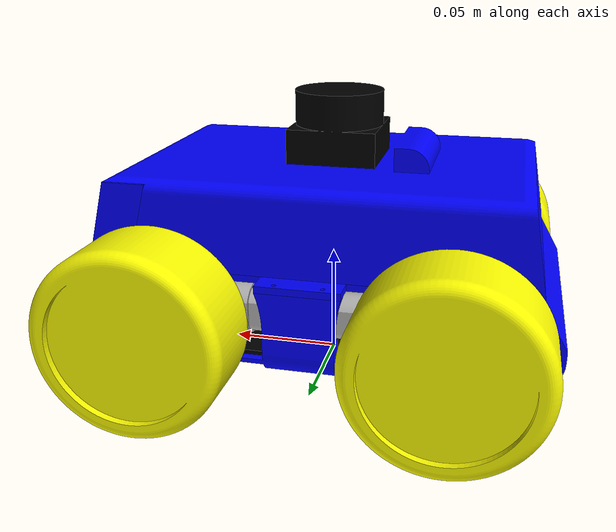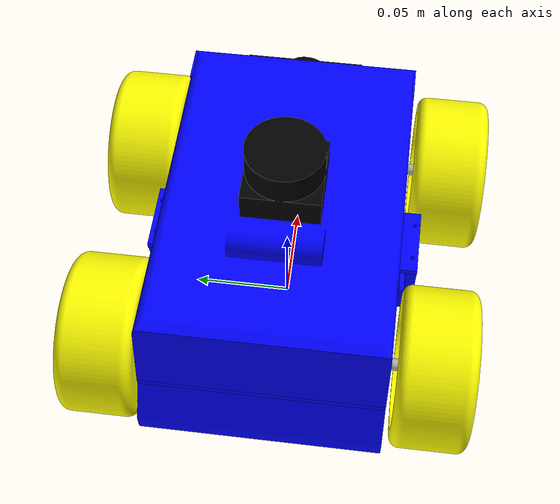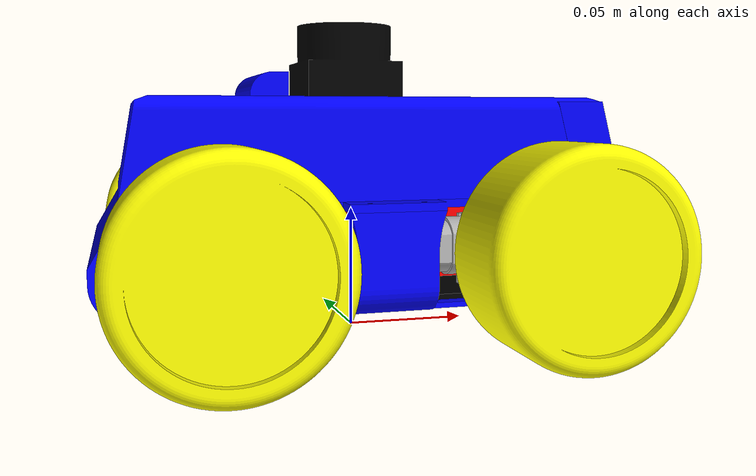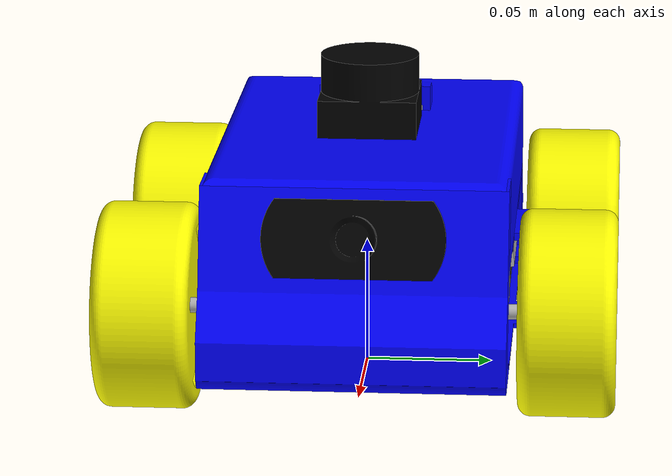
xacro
<?xml version="1.0"?>
<robot name = "Robot_Mecanum" xmlns:xacro="http://www.ros.org/wiki/xacro">

    <xacro:include filename="materials.xacro"/>
    <xacro:include filename="Robot_Mecanum.xacro"/>
    <xacro:include filename="Robot_Mecanum.gazebo"/>
    <xacro:include filename="Robot_Mecanum.trans"/>
    <xacro:include filename="camera.xacro"/>
    <xacro:include filename="lidar.xacro"/>
    <xacro:include filename="imu.xacro"/>

</robot>

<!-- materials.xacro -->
<robot name="Robot_Mecanum" xmlns:xacro="http://www.ros.org/wiki/xacro" >

<material name="gray">
  <color rgba="0.700 0.700 0.700 1.000"/>
</material>

<material name="yellow">
  <color rgba="1.000 1.000 0.000 1.000"/>
</material>

<material name="blue">
  <color rgba="0.000 0.000 1.000 1.000"/>
</material>

<material name="red">
  <color rgba="1.000 0.000 0.000 1.000"/>
</material>

<material name="black">
  <color rgba="0.000 0.000 0.000 1.000"/>
</material>

</robot>

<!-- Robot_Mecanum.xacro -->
<robot name="Robot_Mecanum" xmlns:xacro="http://www.ros.org/wiki/xacro">

<link name="base_link">
  <inertial>
    <origin xyz="4.577524821338663e-06 0.0007996506694356291 0.02200000000000004" rpy="0 0 0"/>
    <mass value="0.24247947305060244"/>
    <inertia ixx="0.000249" iyy="0.000391" izz="0.00064" ixy="-0.0" iyz="0.0" ixz="-0.0"/>
  </inertial>
  <visual>
    <origin xyz="0 0 0" rpy="0 0 0"/>
    <geometry>
      <mesh filename="file://$(find Robot_Mecanum_description)/meshes/base_link.stl" scale="0.001 0.001 0.001"/>
    </geometry>
    <material name="black"/>
  </visual>
  <collision>
    <origin xyz="0 0 0" rpy="0 0 0"/>
    <geometry>
      <mesh filename="file://$(find Robot_Mecanum_description)/meshes/base_link.stl" scale="0.001 0.001 0.001"/>
    </geometry>
  </collision>
</link>

<link name="Uchwyt1_1">
  <inertial>
    <origin xyz="-3.1743554191540624e-06 -0.003228853201678865 0.009790845467155689" rpy="0 0 0"/>
    <mass value="0.006070351658499736"/>
    <inertia ixx="1e-06" iyy="1e-06" izz="0.0" ixy="-0.0" iyz="0.0" ixz="0.0"/>
  </inertial>
  <visual>
    <origin xyz="0.041097 -0.043 -0.023" rpy="0 0 0"/>
    <geometry>
      <mesh filename="file://$(find Robot_Mecanum_description)/meshes/Uchwyt1_1.stl" scale="0.001 0.001 0.001"/>
    </geometry>
    <material name="gray"/>
  </visual>
  <collision>
    <origin xyz="0.041097 -0.043 -0.023" rpy="0 0 0"/>
    <geometry>
      <mesh filename="file://$(find Robot_Mecanum_description)/meshes/Uchwyt1_1.stl" scale="0.001 0.001 0.001"/>
    </geometry>
  </collision>
</link>

<link name="Uchwyt2_1">
  <inertial>
    <origin xyz="3.0609228044570225e-06 0.003228853201678837 0.009790845407550992" rpy="0 0 0"/>
    <mass value="0.006070351658499741"/>
    <inertia ixx="1e-06" iyy="1e-06" izz="0.0" ixy="-0.0" iyz="-0.0" ixz="-0.0"/>
  </inertial>
  <visual>
    <origin xyz="0.041095 0.0415 -0.023" rpy="0 0 0"/>
    <geometry>
      <mesh filename="file://$(find Robot_Mecanum_description)/meshes/Uchwyt2_1.stl" scale="0.001 0.001 0.001"/>
    </geometry>
    <material name="gray"/>
  </visual>
  <collision>
    <origin xyz="0.041095 0.0415 -0.023" rpy="0 0 0"/>
    <geometry>
      <mesh filename="file://$(find Robot_Mecanum_description)/meshes/Uchwyt2_1.stl" scale="0.001 0.001 0.001"/>
    </geometry>
  </collision>
</link>

<link name="Uchwyt4_1">
  <inertial>
    <origin xyz="3.034271700647073e-06 0.0032288532016788787 0.009790845407551117" rpy="0 0 0"/>
    <mass value="0.006070351658499748"/>
    <inertia ixx="1e-06" iyy="1e-06" izz="0.0" ixy="-0.0" iyz="-0.0" ixz="-0.0"/>
  </inertial>
  <visual>
    <origin xyz="-0.0399 0.0415 -0.023" rpy="0 0 0"/>
    <geometry>
      <mesh filename="file://$(find Robot_Mecanum_description)/meshes/Uchwyt4_1.stl" scale="0.001 0.001 0.001"/>
    </geometry>
    <material name="gray"/>
  </visual>
  <collision>
    <origin xyz="-0.0399 0.0415 -0.023" rpy="0 0 0"/>
    <geometry>
      <mesh filename="file://$(find Robot_Mecanum_description)/meshes/Uchwyt4_1.stl" scale="0.001 0.001 0.001"/>
    </geometry>
  </collision>
</link>

<link name="Uchwyt3_1">
  <inertial>
    <origin xyz="-3.309799832242055e-06 -0.0032288532016787053 0.009790845407550972" rpy="0 0 0"/>
    <mass value="0.006070351658499724"/>
    <inertia ixx="1e-06" iyy="1e-06" izz="0.0" ixy="-0.0" iyz="0.0" ixz="0.0"/>
  </inertial>
  <visual>
    <origin xyz="-0.039898 -0.043 -0.023" rpy="0 0 0"/>
    <geometry>
      <mesh filename="file://$(find Robot_Mecanum_description)/meshes/Uchwyt3_1.stl" scale="0.001 0.001 0.001"/>
    </geometry>
    <material name="gray"/>
  </visual>
  <collision>
    <origin xyz="-0.039898 -0.043 -0.023" rpy="0 0 0"/>
    <geometry>
      <mesh filename="file://$(find Robot_Mecanum_description)/meshes/Uchwyt3_1.stl" scale="0.001 0.001 0.001"/>
    </geometry>
  </collision>
</link>

<link name="Silnik1_1">
  <inertial>
    <origin xyz="-0.0031191816336816544 0.00950000869866692 -0.008999995008126038" rpy="0 0 0"/>
    <mass value="0.025325764546616242"/>
    <inertia ixx="2e-06" iyy="9e-06" izz="9e-06" ixy="-0.0" iyz="0.0" ixz="-0.0"/>
  </inertial>
  <visual>
    <origin xyz="0.041099 -0.039 -0.049" rpy="0 0 0"/>
    <geometry>
      <mesh filename="file://$(find Robot_Mecanum_description)/meshes/Silnik1_1.stl" scale="0.001 0.001 0.001"/>
    </geometry>
    <material name="gray"/>
  </visual>
  <collision>
    <origin xyz="0.041099 -0.039 -0.049" rpy="0 0 0"/>
    <geometry>
      <mesh filename="file://$(find Robot_Mecanum_description)/meshes/Silnik1_1.stl" scale="0.001 0.001 0.001"/>
    </geometry>
  </collision>
</link>

<link name="Silnik2_1">
  <inertial>
    <origin xyz="-0.0031192637758870254 -0.009499991301333055 -0.008999995067730651" rpy="0 0 0"/>
    <mass value="0.025325764546616242"/>
    <inertia ixx="2e-06" iyy="9e-06" izz="9e-06" ixy="-0.0" iyz="0.0" ixz="-0.0"/>
  </inertial>
  <visual>
    <origin xyz="0.041094 0.0375 -0.049" rpy="0 0 0"/>
    <geometry>
      <mesh filename="file://$(find Robot_Mecanum_description)/meshes/Silnik2_1.stl" scale="0.001 0.001 0.001"/>
    </geometry>
    <material name="gray"/>
  </visual>
  <collision>
    <origin xyz="0.041094 0.0375 -0.049" rpy="0 0 0"/>
    <geometry>
      <mesh filename="file://$(find Robot_Mecanum_description)/meshes/Silnik2_1.stl" scale="0.001 0.001 0.001"/>
    </geometry>
  </collision>
</link>

<link name="Silnik3_1">
  <inertial>
    <origin xyz="0.003120014898859255 0.009499991301333152 -0.008999995067730644" rpy="0 0 0"/>
    <mass value="0.025325764546616253"/>
    <inertia ixx="2e-06" iyy="9e-06" izz="9e-06" ixy="-0.0" iyz="-0.0" ixz="0.0"/>
  </inertial>
  <visual>
    <origin xyz="-0.039896 -0.039 -0.049" rpy="0 0 0"/>
    <geometry>
      <mesh filename="file://$(find Robot_Mecanum_description)/meshes/Silnik3_1.stl" scale="0.001 0.001 0.001"/>
    </geometry>
    <material name="gray"/>
  </visual>
  <collision>
    <origin xyz="-0.039896 -0.039 -0.049" rpy="0 0 0"/>
    <geometry>
      <mesh filename="file://$(find Robot_Mecanum_description)/meshes/Silnik3_1.stl" scale="0.001 0.001 0.001"/>
    </geometry>
  </collision>
</link>

<link name="Silnik4_1">
  <inertial>
    <origin xyz="0.0031200415499631415 -0.00950000869866692 -0.008999995067730644" rpy="0 0 0"/>
    <mass value="0.025325764546616253"/>
    <inertia ixx="2e-06" iyy="9e-06" izz="9e-06" ixy="-0.0" iyz="-0.0" ixz="0.0"/>
  </inertial>
  <visual>
    <origin xyz="-0.039901 0.0375 -0.049" rpy="0 0 0"/>
    <geometry>
      <mesh filename="file://$(find Robot_Mecanum_description)/meshes/Silnik4_1.stl" scale="0.001 0.001 0.001"/>
    </geometry>
    <material name="gray"/>
  </visual>
  <collision>
    <origin xyz="-0.039901 0.0375 -0.049" rpy="0 0 0"/>
    <geometry>
      <mesh filename="file://$(find Robot_Mecanum_description)/meshes/Silnik4_1.stl" scale="0.001 0.001 0.001"/>
    </geometry>
  </collision>
</link>

<link name="L298N2_1">
  <inertial>
    <origin xyz="0.0656911877807432 1.7447707953454402e-07 -0.007999999999999965" rpy="0 0 0"/>
    <mass value="0.4768874999999997"/>
    <inertia ixx="0.000116" iyy="0.000116" izz="0.000161" ixy="0.0" iyz="-0.0" ixz="-0.0"/>
  </inertial>
  <visual>
    <origin xyz="0.035691 -0.000802 -0.046" rpy="0 0 0"/>
    <geometry>
      <mesh filename="file://$(find Robot_Mecanum_description)/meshes/L298N2_1.stl" scale="0.001 0.001 0.001"/>
    </geometry>
    <material name="red"/>
  </visual>
  <collision>
    <origin xyz="0.035691 -0.000802 -0.046" rpy="0 0 0"/>
    <geometry>
      <mesh filename="file://$(find Robot_Mecanum_description)/meshes/L298N2_1.stl" scale="0.001 0.001 0.001"/>
    </geometry>
  </collision>
</link>

<link name="L298N1_1">
  <inertial>
    <origin xyz="0.005691187780743217 1.744770795392061e-07 -0.007999999999999965" rpy="0 0 0"/>
    <mass value="0.4768874999999998"/>
    <inertia ixx="0.000116" iyy="0.000116" izz="0.000161" ixy="0.0" iyz="0.0" ixz="0.0"/>
  </inertial>
  <visual>
    <origin xyz="0.035691 -0.000802 -0.046" rpy="0 0 0"/>
    <geometry>
      <mesh filename="file://$(find Robot_Mecanum_description)/meshes/L298N1_1.stl" scale="0.001 0.001 0.001"/>
    </geometry>
    <material name="red"/>
  </visual>
  <collision>
    <origin xyz="0.035691 -0.000802 -0.046" rpy="0 0 0"/>
    <geometry>
      <mesh filename="file://$(find Robot_Mecanum_description)/meshes/L298N1_1.stl" scale="0.001 0.001 0.001"/>
    </geometry>
  </collision>
</link>

<link name="Stelarz_1">
  <inertial>
    <origin xyz="-0.05181081268270672 -2.8158429765618516e-05 0.02171900655487808" rpy="0 0 0"/>
    <mass value="1.86907819831891"/>
    <inertia ixx="0.003472" iyy="0.014035" izz="0.016003" ixy="4e-06" iyz="2e-06" ixz="-0.000894"/>
  </inertial>
  <visual>
    <origin xyz="-0.069605 -0.000802 -0.022" rpy="0 0 0"/>
    <geometry>
      <mesh filename="file://$(find Robot_Mecanum_description)/meshes/Stelarz_1.stl" scale="0.001 0.001 0.001"/>
    </geometry>
    <material name="blue"/>
  </visual>
  <collision>
    <origin xyz="-0.069605 -0.000802 -0.022" rpy="0 0 0"/>
    <geometry>
      <mesh filename="file://$(find Robot_Mecanum_description)/meshes/Stelarz_1.stl" scale="0.001 0.001 0.001"/>
    </geometry>
  </collision>
</link>

<link name="Pokrywa_1">
  <inertial>
    <origin xyz="0.05651394799725071 0.040804989460773225 0.0014995080756887713" rpy="0 0 0"/>
    <mass value="0.37401588766271837"/>
    <inertia ixx="0.000476" iyy="0.000517" izz="0.000993" ixy="0.0" iyz="0.0" ixz="0.0"/>
  </inertial>
  <visual>
    <origin xyz="0.085691 0.04 -0.055821" rpy="0 0 0"/>
    <geometry>
      <mesh filename="file://$(find Robot_Mecanum_description)/meshes/Pokrywa_1.stl" scale="0.001 0.001 0.001"/>
    </geometry>
    <material name="blue"/>
  </visual>
  <collision>
    <origin xyz="0.085691 0.04 -0.055821" rpy="0 0 0"/>
    <geometry>
      <mesh filename="file://$(find Robot_Mecanum_description)/meshes/Pokrywa_1.stl" scale="0.001 0.001 0.001"/>
    </geometry>
  </collision>
</link>

<link name="Kolo2_1">
  <inertial>
    <origin xyz="4.0221259182959823e-07 -0.01576125497762243 5.551115123125783e-17" rpy="0 0 0"/>
    <mass value="1.306481563794594"/>
    <inertia ixx="0.000659" iyy="0.001075" izz="0.000659" ixy="0.0" iyz="-0.0" ixz="-0.0"/>
  </inertial>
  <visual>
    <origin xyz="0.062094 0.0645 -0.04" rpy="0 0 0"/>
    <geometry>
      <mesh filename="file://$(find Robot_Mecanum_description)/meshes/Kolo2_1.stl" scale="0.001 0.001 0.001"/>
    </geometry>
    <material name="yellow"/>
  </visual>
  <collision>
    <origin xyz="0.062094 0.0645 -0.04" rpy="0 0 0"/>
    <geometry>
      <mesh filename="file://$(find Robot_Mecanum_description)/meshes/Kolo2_1.stl" scale="0.001 0.001 0.001"/>
    </geometry>
  </collision>
</link>

<link name="Kolo3_1">
  <inertial>
    <origin xyz="3.4891038197537583e-07 0.015761254977622513 6.245004513516506e-17" rpy="0 0 0"/>
    <mass value="1.3064815637945943"/>
    <inertia ixx="0.000659" iyy="0.001075" izz="0.000659" ixy="-0.0" iyz="0.0" ixz="-0.0"/>
  </inertial>
  <visual>
    <origin xyz="-0.060896 -0.066 -0.04" rpy="0 0 0"/>
    <geometry>
      <mesh filename="file://$(find Robot_Mecanum_description)/meshes/Kolo3_1.stl" scale="0.001 0.001 0.001"/>
    </geometry>
    <material name="yellow"/>
  </visual>
  <collision>
    <origin xyz="-0.060896 -0.066 -0.04" rpy="0 0 0"/>
    <geometry>
      <mesh filename="file://$(find Robot_Mecanum_description)/meshes/Kolo3_1.stl" scale="0.001 0.001 0.001"/>
    </geometry>
  </collision>
</link>

<link name="Kolo4_1">
  <inertial>
    <origin xyz="3.755614843004018e-07 -0.01576125497762243 6.938893903907228e-17" rpy="0 0 0"/>
    <mass value="1.3064815637945943"/>
    <inertia ixx="0.000659" iyy="0.001075" izz="0.000659" ixy="-0.0" iyz="-0.0" ixz="0.0"/>
  </inertial>
  <visual>
    <origin xyz="-0.060901 0.0645 -0.04" rpy="0 0 0"/>
    <geometry>
      <mesh filename="file://$(find Robot_Mecanum_description)/meshes/Kolo4_1.stl" scale="0.001 0.001 0.001"/>
    </geometry>
    <material name="yellow"/>
  </visual>
  <collision>
    <origin xyz="-0.060901 0.0645 -0.04" rpy="0 0 0"/>
    <geometry>
      <mesh filename="file://$(find Robot_Mecanum_description)/meshes/Kolo4_1.stl" scale="0.001 0.001 0.001"/>
    </geometry>
  </collision>
</link>

<link name="Kolo1_1">
  <inertial>
    <origin xyz="4.843547956115413e-07 0.015761254977622402 5.960467536203495e-11" rpy="0 0 0"/>
    <mass value="1.3064815637945943"/>
    <inertia ixx="0.000659" iyy="0.001075" izz="0.000659" ixy="0.0" iyz="0.0" ixz="-0.0"/>
  </inertial>
  <visual>
    <origin xyz="0.062099 -0.066 -0.04" rpy="0 0 0"/>
    <geometry>
      <mesh filename="file://$(find Robot_Mecanum_description)/meshes/Kolo1_1.stl" scale="0.001 0.001 0.001"/>
    </geometry>
    <material name="yellow"/>
  </visual>
  <collision>
    <origin xyz="0.062099 -0.066 -0.04" rpy="0 0 0"/>
    <geometry>
      <mesh filename="file://$(find Robot_Mecanum_description)/meshes/Kolo1_1.stl" scale="0.001 0.001 0.001"/>
    </geometry>
  </collision>
</link>

<link name="Dach_1">
  <inertial>
    <origin xyz="0.04914843524315145 -4.920853241970839e-07 0.022374287225597173" rpy="0 0 0"/>
    <mass value="1.0991056320474606"/>
    <inertia ixx="0.001896" iyy="0.002974" izz="0.004541" ixy="0.0" iyz="0.0" ixz="-0.000215"/>
  </inertial>
  <visual>
    <origin xyz="0.095691 -0.000802 -0.058821" rpy="0 0 0"/>
    <geometry>
      <mesh filename="file://$(find Robot_Mecanum_description)/meshes/Dach_1.stl" scale="0.001 0.001 0.001"/>
    </geometry>
    <material name="blue"/>
  </visual>
  <collision>
    <origin xyz="0.095691 -0.000802 -0.058821" rpy="0 0 0"/>
    <geometry>
      <mesh filename="file://$(find Robot_Mecanum_description)/meshes/Dach_1.stl" scale="0.001 0.001 0.001"/>
    </geometry>
  </collision>
</link>

<link name="dummy"/>

<joint name="dummy_joint" type="fixed">
<parent link="dummy"/>
<child link="base_link"/>
</joint>

<joint name="Sztywne 21" type="fixed">
  <origin xyz="-0.041097 0.043 0.023" rpy="0 0 0"/>
  <parent link="base_link"/>
  <child link="Uchwyt1_1"/>
</joint>

<joint name="Sztywne 22" type="fixed">
  <origin xyz="-0.041095 -0.0415 0.023" rpy="0 0 0"/>
  <parent link="base_link"/>
  <child link="Uchwyt2_1"/>
</joint>

<joint name="Sztywne 23" type="fixed">
  <origin xyz="0.0399 -0.0415 0.023" rpy="0 0 0"/>
  <parent link="base_link"/>
  <child link="Uchwyt4_1"/>
</joint>

<joint name="Sztywne 24" type="fixed">
  <origin xyz="0.039898 0.043 0.023" rpy="0 0 0"/>
  <parent link="base_link"/>
  <child link="Uchwyt3_1"/>
</joint>

<joint name="Sztywne 25" type="fixed">
  <origin xyz="-2e-06 -0.004 0.026" rpy="0 0 0"/>
  <parent link="Uchwyt1_1"/>
  <child link="Silnik1_1"/>
</joint>

<joint name="Sztywne 26" type="fixed">
  <origin xyz="1e-06 0.004 0.026" rpy="0 0 0"/>
  <parent link="Uchwyt2_1"/>
  <child link="Silnik2_1"/>
</joint>

<joint name="Sztywne 27" type="fixed">
  <origin xyz="-2e-06 -0.004 0.026" rpy="0 0 0"/>
  <parent link="Uchwyt3_1"/>
  <child link="Silnik3_1"/>
</joint>

<joint name="Sztywne 28" type="fixed">
  <origin xyz="1e-06 0.004 0.026" rpy="0 0 0"/>
  <parent link="Uchwyt4_1"/>
  <child link="Silnik4_1"/>
</joint>

<joint name="Sztywne 29" type="fixed">
  <origin xyz="-0.035691 0.000802 0.046" rpy="0 0 0"/>
  <parent link="base_link"/>
  <child link="L298N2_1"/>
</joint>

<joint name="Sztywne 30" type="fixed">
  <origin xyz="-0.035691 0.000802 0.046" rpy="0 0 0"/>
  <parent link="base_link"/>
  <child link="L298N1_1"/>
</joint>

<joint name="Sztywne 31" type="fixed">
  <origin xyz="0.069605 0.000802 0.022" rpy="0 0 0"/>
  <parent link="base_link"/>
  <child link="Stelarz_1"/>
</joint>

<joint name="Sztywne 32" type="fixed">
  <origin xyz="-0.155296 -0.040802 0.033821" rpy="0 0 0"/>
  <parent link="Stelarz_1"/>
  <child link="Pokrywa_1"/>
</joint>

<joint name="Obrot 35" type="continuous">
  <origin xyz="-0.021 -0.027 -0.009" rpy="0 0 0"/>
  <parent link="Silnik2_1"/>
  <child link="Kolo2_1"/>
  <axis xyz="0.0 -1.0 0.0"/>
</joint>

<joint name="Obrot 36" type="continuous">
  <origin xyz="0.021 0.027 -0.009" rpy="0 0 0"/>
  <parent link="Silnik3_1"/>
  <child link="Kolo3_1"/>
  <axis xyz="-0.0 1.0 0.0"/>
</joint>

<joint name="Obrot 37" type="continuous">
  <origin xyz="0.021 -0.027 -0.009" rpy="0 0 0"/>
  <parent link="Silnik4_1"/>
  <child link="Kolo4_1"/>
  <axis xyz="0.0 -1.0 0.0"/>
</joint>

<joint name="Obrot 38" type="continuous">
  <origin xyz="-0.021 0.027 -0.009" rpy="0 0 0"/>
  <parent link="Silnik1_1"/>
  <child link="Kolo1_1"/>
  <axis xyz="-0.0 1.0 -0.0"/>
</joint>

<joint name="Sztywne 39" type="fixed">
  <origin xyz="-0.01 0.040802 0.003" rpy="0 0 0"/>
  <parent link="Pokrywa_1"/>
  <child link="Dach_1"/>
</joint>

</robot>

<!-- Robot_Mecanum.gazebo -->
<robot name="Robot_Mecanum" xmlns:xacro="http://www.ros.org/wiki/xacro" >

<xacro:property name="body_color" value="Gazebo/Gray" />
<xacro:property name="wheel_color" value="Gazebo/Yellow" />
<xacro:property name="black_color" value="Gazebo/Black" />
<xacro:property name="blue_color" value="Gazebo/Blue" />

<gazebo reference="base_link">
  <material>${black_color}</material>
  <mu1>0.2</mu1>
  <mu2>0.2</mu2>
  <self_collide>true</self_collide>
  <gravity>true</gravity>
</gazebo>

<gazebo reference="Uchwyt1_1">
  <material>${body_color}</material>
  <mu1>0.2</mu1>
  <mu2>0.2</mu2>
  <self_collide>true</self_collide>
</gazebo>

<gazebo reference="Uchwyt2_1">
  <material>${body_color}</material>
  <mu1>0.2</mu1>
  <mu2>0.2</mu2>
  <self_collide>true</self_collide>
</gazebo>

<gazebo reference="Uchwyt4_1">
  <material>${body_color}</material>
  <mu1>0.2</mu1>
  <mu2>0.2</mu2>
  <self_collide>true</self_collide>
</gazebo>

<gazebo reference="Uchwyt3_1">
  <material>${body_color}</material>
  <mu1>0.2</mu1>
  <mu2>0.2</mu2>
  <self_collide>true</self_collide>
</gazebo>

<gazebo reference="Silnik1_1">
  <material>${body_color}</material>
  <mu1>0.2</mu1>
  <mu2>0.2</mu2>
  <self_collide>true</self_collide>
</gazebo>

<gazebo reference="Silnik2_1">
  <material>${body_color}</material>
  <mu1>0.2</mu1>
  <mu2>0.2</mu2>
  <self_collide>true</self_collide>
</gazebo>

<gazebo reference="Silnik3_1">
  <material>${body_color}</material>
  <mu1>0.2</mu1>
  <mu2>0.2</mu2>
  <self_collide>true</self_collide>
</gazebo>

<gazebo reference="Silnik4_1">
  <material>${body_color}</material>
  <mu1>0.2</mu1>
  <mu2>0.2</mu2>
  <self_collide>true</self_collide>
</gazebo>

<gazebo reference="L298N2_1">
  <material>${body_color}</material>
  <mu1>0.2</mu1>
  <mu2>0.2</mu2>
  <self_collide>true</self_collide>
</gazebo>

<gazebo reference="L298N1_1">
  <material>${body_color}</material>
  <mu1>0.2</mu1>
  <mu2>0.2</mu2>
  <self_collide>true</self_collide>
</gazebo>

<gazebo reference="Stelarz_1">
  <material>${blue_color}</material>
  <mu1>0.2</mu1>
  <mu2>0.2</mu2>
  <self_collide>true</self_collide>
</gazebo>

<gazebo reference="Pokrywa_1">
  <material>${blue_color}</material>
  <mu1>0.2</mu1>
  <mu2>0.2</mu2>
  <self_collide>true</self_collide>
</gazebo>

<gazebo reference="JetsonNano_1">
  <material>${body_color}</material>
  <mu1>0.2</mu1>
  <mu2>0.2</mu2>
  <self_collide>true</self_collide>
</gazebo>

<gazebo reference="Kamera_1">
  <material>${black_color}</material>
  <mu1>0.2</mu1>
  <mu2>0.2</mu2>
  <self_collide>true</self_collide>
</gazebo>

<gazebo reference="Kolo2_1">
  <material>${wheel_color}</material>
  <mu1>0.2</mu1>
  <mu2>0.2</mu2>
  <self_collide>true</self_collide>
</gazebo>

<gazebo reference="Kolo3_1">
  <material>${wheel_color}</material>
  <mu1>0.2</mu1>
  <mu2>0.2</mu2>
  <self_collide>true</self_collide>
</gazebo>

<gazebo reference="Kolo4_1">
  <material>${wheel_color}</material>
  <mu1>0.2</mu1>
  <mu2>0.2</mu2>
  <self_collide>true</self_collide>
</gazebo>

<gazebo reference="Kolo1_1">
  <material>${wheel_color}</material>
  <mu1>0.2</mu1>
  <mu2>0.2</mu2>
  <self_collide>true</self_collide>
</gazebo>

<gazebo reference="Dach_1">
  <material>${blue_color}</material>
  <mu1>0.2</mu1>
  <mu2>0.2</mu2>
  <self_collide>true</self_collide>
</gazebo>

<gazebo reference="Lidar_1">
  <material>${black_color}</material>
  <mu1>0.2</mu1>
  <mu2>0.2</mu2>
  <self_collide>true</self_collide>
</gazebo>

<gazebo>
  <plugin name="diff_drive_controller" filename="libgazebo_ros_diff_drive.so">
      <!-- Update rate in Hz -->
      <update_rate>50</update_rate>

      <!-- wheels -->
      <num_wheel_pairs>2</num_wheel_pairs>
      <left_joint>Obrot 38</left_joint>
      <left_joint>Obrot 36</left_joint>
      <right_joint>Obrot 35</right_joint>
      <right_joint>Obrot 37</right_joint>

      <!-- kinematics -->
      <wheel_separation>0.1305</wheel_separation>
      <wheel_diameter>0.08</wheel_diameter>

      <!-- limits -->

      <!-- input -->

      <!-- output -->
      <publish_odom>true</publish_odom>
      <publish_odom_tf>true</publish_odom_tf>
      <publish_wheel_tf>true</publish_wheel_tf>

      <odometry_topic>odom</odometry_topic>
      <odometry_frame>odom</odometry_frame>
      <robot_base_frame>dummy</robot_base_frame>

    </plugin>

</gazebo>

</robot>

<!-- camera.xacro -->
<robot name="Robot_Mecanum" xmlns:xacro="http://www.ros.org/wiki/xacro">

    <link name="Kamera_1">
        <inertial>
        <origin xyz="0.03974558141104175 1.8866818979508537e-10 -0.03694270009998575" rpy="0 0 0"/>
        <mass value="0.37160158054579484"/>
        <inertia ixx="0.000155" iyy="4.3e-05" izz="0.000151" ixy="0.0" iyz="0.0" ixz="1e-06"/>
        </inertial>
        <visual>
        <origin xyz="-0.040566 -0.001 -0.110575" rpy="0 0 0"/>
        <geometry>
            <mesh filename="file://$(find Robot_Mecanum_description)/meshes/Kamera_1.stl" scale="0.001 0.001 0.001"/>
        </geometry>
        <material name="black"/>
        </visual>
        <collision>
        <origin xyz="-0.040566 -0.001 -0.110575" rpy="0 0 0"/>
        <geometry>
            <mesh filename="file://$(find Robot_Mecanum_description)/meshes/Kamera_1.stl" scale="0.001 0.001 0.001"/>
        </geometry>
        </collision>
    </link>

    <joint name="Sztywne 34" type="fixed">
        <origin xyz="-0.029039 0.000198 0.088575" rpy="0 0 0"/>
        <parent link="Stelarz_1"/>
        <child link="Kamera_1"/>
    </joint>

    <link name = "Camera"></link>

    <joint name="Camera_joint" type="fixed">
        <origin xyz="0.06 0 -0.03" rpy="0 -0.34 0"/>
        <parent link="Kamera_1"/>
        <child link="Camera"/>
    </joint>

    <gazebo reference = "Camera">
        <material>Gazebo/Red</material>
        <sensor name="camera_sensor" type="camera">
            <pose>0 0 0 0 0 0</pose>
            <visualize>true</visualize>
            <update_rate>10.0</update_rate>
            <plugin name="camera_controller" filename="libgazebo_ros_camera.so">
                <frame_name>camera_link</frame_name>
            </plugin>
        </sensor>
    </gazebo>

</robot>

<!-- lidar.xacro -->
<robot name="Robot_Mecanum" xmlns:xacro="http://www.ros.org/wiki/xacro">

    <link name="Lidar_1">
        <inertial>
          <origin xyz="-2.623805824665884e-07 1.744770797698159e-07 0.014098154541206387" rpy="0 0 0"/>
          <mass value="0.3197607939186152"/>
          <inertia ixx="6e-05" iyy="6e-05" izz="7.2e-05" ixy="0.0" iyz="0.0" ixz="-0.0"/>
        </inertial>
        <visual>
          <origin xyz="0.002812 -0.000802 -0.096168" rpy="0 0 0"/>
          <geometry>
            <mesh filename="file://$(find Robot_Mecanum_description)/meshes/Lidar_1.stl" scale="0.001 0.001 0.001"/>
          </geometry>
          <material name="black"/>
        </visual>
        <collision>
          <origin xyz="0.002812 -0.000802 -0.096168" rpy="0 0 0"/>
          <geometry>
            <mesh filename="file://$(find Robot_Mecanum_description)/meshes/Lidar_1.stl" scale="0.001 0.001 0.001"/>
          </geometry>
        </collision>
    </link>

    <joint name="Sztywne 40" type="fixed">
        <origin xyz="0.092879 0.0 0.037347" rpy="0 0 0"/>
        <parent link="Dach_1"/>
        <child link="Lidar_1"/>
    </joint>

    <gazebo reference="Lidar_1">
      <sensor name="laser" type="ray">
          <pose> 0 0 0 0 0 0 </pose>
          <visualize>true</visualize>
          <update_rate>10</update_rate>
          <ray>
              <scan>
                  <horizontal>
                      <samples>360</samples>
                      <resolution>1</resolution>
                      <min_angle>-3.14</min_angle>
                      <max_angle>3.14</max_angle>
                  </horizontal>
              </scan>
              <range>
                  <min>0.3</min>
                  <max>12</max>
                  <resolution>0.01</resolution>
              </range>
              <noise>
                  <type>gaussian</type>
                  <mean>0.0</mean>
                  <stddev>0.01</stddev>
                </noise>
          </ray>
          <plugin name="lidar" filename="libgazebo_ros_ray_sensor.so">
              <ros>
                  <remapping>~/out:=scan</remapping>
              </ros>
              <output_type>sensor_msgs/LaserScan</output_type>
              <frame_name>lidar_link</frame_name>
          </plugin>
      </sensor>
    </gazebo>

</robot>

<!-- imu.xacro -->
<robot name="Robot_Mecanum" xmlns:xacro="http://www.ros.org/wiki/xacro">

    <link name="JetsonNano_1">
        <inertial>
          <origin xyz="0.04569099999999997 1.744770795704311e-07 -0.007500491924311237" rpy="0 0 0"/>
          <mass value="1.884"/>
          <inertia ixx="0.001146" iyy="0.001711" izz="0.002575" ixy="0.0" iyz="0.0" ixz="0.0"/>
        </inertial>
        <visual>
          <origin xyz="0.066382 -0.000802 -0.081321" rpy="0 0 0"/>
          <geometry>
            <mesh filename="file://$(find Robot_Mecanum_description)/meshes/JetsonNano_1.stl" scale="0.001 0.001 0.001"/>
          </geometry>
          <material name="gray"/>
        </visual>
        <collision>
          <origin xyz="0.066382 -0.000802 -0.081321" rpy="0 0 0"/>
          <geometry>
            <mesh filename="file://$(find Robot_Mecanum_description)/meshes/JetsonNano_1.stl" scale="0.001 0.001 0.001"/>
          </geometry>
        </collision>
      </link>

      <joint name="Sztywne 33" type="fixed">
        <origin xyz="0.019309 0.040802 0.0255" rpy="0 0 0"/>
        <parent link="Pokrywa_1"/>
        <child link="JetsonNano_1"/>
      </joint>

      <gazebo reference="JetsonNano_1">
        <material>Gazebo/Red</material>
        <sensor name="my_imu" type="imu">
            <always_on>true</always_on>
            <update_rate>100</update_rate>
            <plugin name="imu_link" filename="libgazebo_ros_imu_sensor.so">
                <ros>
                  <remapping>~/out:=imu</remapping>
                </ros>
              </plugin>
          </sensor>
      </gazebo>

</robot>
